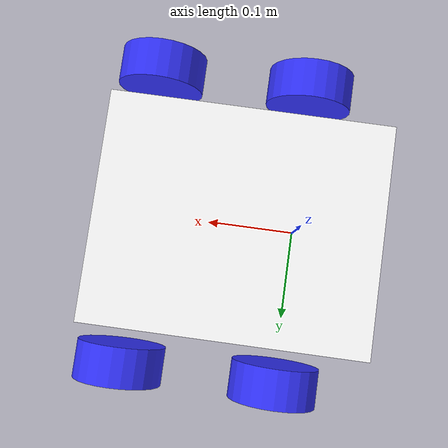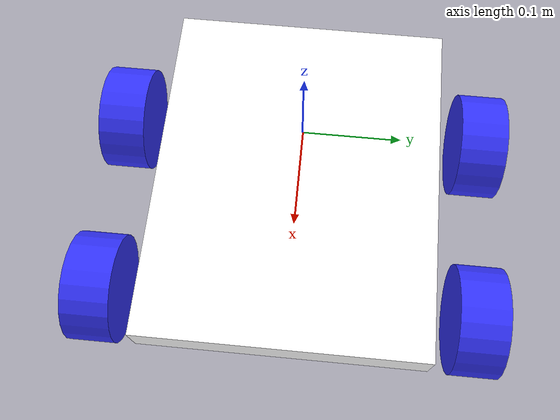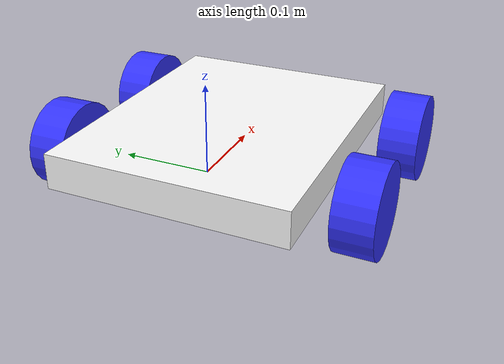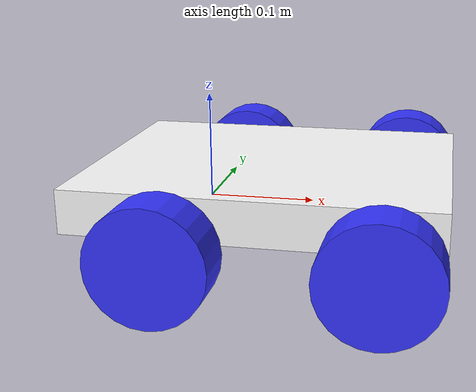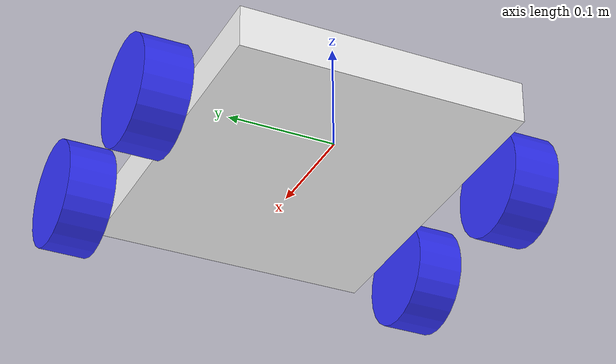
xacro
<?xml version="1.0"?>
<robot xmlns:xacro="http://www.ros.org/wiki/xacro"  name="robot">

    <xacro:include filename="robot_core.xacro" />
    <xacro:include filename="ros2_control.xacro" />

</robot>

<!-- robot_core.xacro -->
<robot xmlns:xacro="http://www.ros.org/wiki/xacro" >
    <xacro:include filename="intertial_macros.xacro"/>

   <material name="white">
        <color rgba="1 1 1 1" />
    </material>

    <material name="orange">
        <color rgba="1 0.3 0.1 1"/>
    </material>

    <material name="blue">
        <color rgba="0.2 0.2 1 1"/>
    </material>

    <material name="black">
        <color rgba="0 0 0 1"/>
    </material>

    <material name="red">
        <color rgba="1 0 0 1"/>
    </material>

    <!-- BASE LINK -->

    <link name="base_link">

    </link>

    <!-- CHASSIS LINK -->

    <joint name="chassis_joint" type="fixed">
        <parent link="base_link"/>
        <child link="chassis"/>
        <origin xyz="-0.1 0 0"/>
    </joint>

    <link name="chassis">
        <visual>
            <origin xyz="0.165 0 0.02"/>
            <geometry>
                <box size="0.33 0.267 0.04"/>
            </geometry>
            <material name="white"/>
        </visual>
        <collision>
            <origin xyz="0.165 0 0.02"/>
            <geometry>
                <box size="0.33 0.267 0.04"/>
            </geometry>
        </collision>

        <xacro:inertial_box mass="2" x="0.33" y="0.267" z="0.04">
            <origin xyz="0.165 0 0.02" rpy="0 0 0"/>
        </xacro:inertial_box>
    </link>
    <gazebo reference="chassis">
        <material>Gazebo/White</material>
    </gazebo>
    <!-- LEFT WHEEL LINK -->

    <joint name="left_wheel_joint" type="continuous">
        <parent link="base_link"/>
        <child link="left_wheel"/>
        <origin xyz="0 0.175 0" rpy="-${pi/2} 0 0" />
        <axis xyz="0 0 1"/>
    </joint>

    <link name="left_wheel">
        <visual>
            <geometry>
                <cylinder radius="0.051" length="0.044"/>
            </geometry>
            <material name="blue"/>
        </visual>
        <collision>
            <geometry>
                <sphere radius="0.051"/>
            </geometry>
        </collision>
        <xacro:inertial_cylinder mass="0.2" length="0.044" radius="0.051">
            <origin xyz="0 0 0" rpy="0 0 0"/>
        </xacro:inertial_cylinder>
    </link>
    <gazebo reference="left_wheel">
        <material>Gazebo/Blue</material>
    </gazebo>

    <!-- RIGHT WHEEL LINK -->

    <joint name="right_wheel_joint" type="continuous">
        <parent link="base_link"/>
        <child link="right_wheel"/>
        <origin xyz="0 -0.175 0" rpy="${pi/2} 0 0" />
        <axis xyz="0 0 -1"/>
    </joint>

    <link name="right_wheel">
        <visual>
            <geometry>
                <cylinder radius="0.051" length="0.044"/>
            </geometry>
            <material name="blue"/>
        </visual>
        <collision>
            <geometry>
                <sphere radius="0.051"/>
            </geometry>
        </collision>
        <xacro:inertial_cylinder mass="0.2" length="0.044" radius="0.051">
            <origin xyz="0 0 0" rpy="0 0 0"/>
        </xacro:inertial_cylinder>
    </link>
    <gazebo reference="right_wheel">
        <material>Gazebo/Blue</material>
    </gazebo>

    <!-- FRONT CASTER WHEELS -->

        <!-- LEFT WHEEL LINK -->

        <joint name="caster_left_joint" type="fixed">
            <parent link="base_link"/>
            <child link="caster_left_wheel"/>
            <origin xyz="0.18 0.175 0" rpy="-${pi/2} 0 0" />
            <axis xyz="0 0 1"/>
        </joint>

        <link name="caster_left_wheel">
            <visual>
                <geometry>
                    <cylinder radius="0.051" length="0.044"/>
                </geometry>
                <material name="blue"/>
            </visual>
            <collision>
                <geometry>
                    <sphere radius="0.051"/>
                </geometry>
            </collision>
            <xacro:inertial_cylinder mass="0.2" length="0.044" radius="0.051">
            <origin xyz="0 0 0" rpy="0 0 0"/>
            </xacro:inertial_cylinder>
        </link>
        <gazebo reference="caster_left_wheel">
            <material>Gazebo/Blue</material>
            <mu1 value="0.001"/>
            <mu2 value="0.001"/>
        </gazebo>

        <!-- RIGHT WHEEL LINK -->

        <joint name="caster_right_joint" type="fixed">
            <parent link="base_link"/>
            <child link="caster_right_wheel"/>
            <origin xyz="0.18 -0.175 0" rpy="${pi/2} 0 0" />
            <axis xyz="0 0 -1"/>
        </joint>

        <link name="caster_right_wheel">
            <visual>
                <geometry>
                    <cylinder radius="0.051" length="0.044"/>
                </geometry>
                <material name="blue"/>
            </visual>
            <collision>
                <geometry>
                    <sphere radius="0.051" />
                </geometry>
            </collision>
            <xacro:inertial_cylinder mass="0.2" length="0.044" radius="0.051">
            <origin xyz="0 0 0" rpy="0 0 0"/>
            </xacro:inertial_cylinder>
        </link>
        <gazebo reference="caster_right_wheel">
            <material>Gazebo/Blue</material>
            <mu1 value="0.001"/>
            <mu2 value="0.001"/>
        </gazebo>
</robot>
